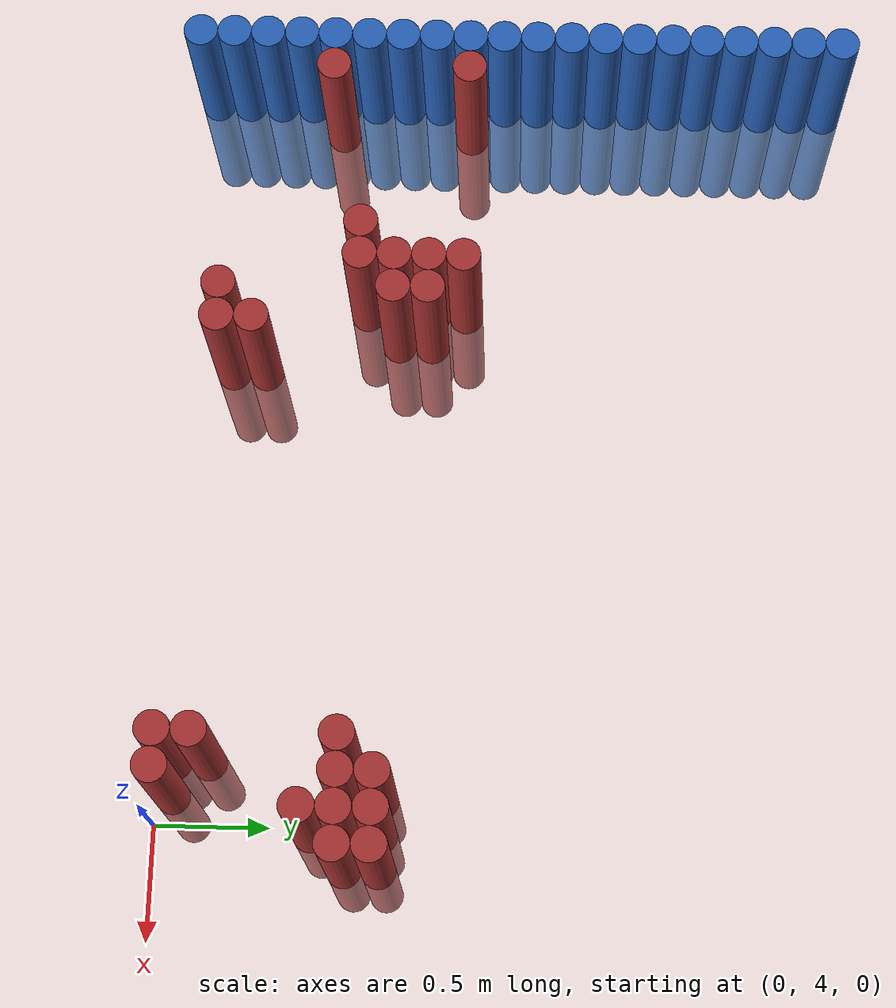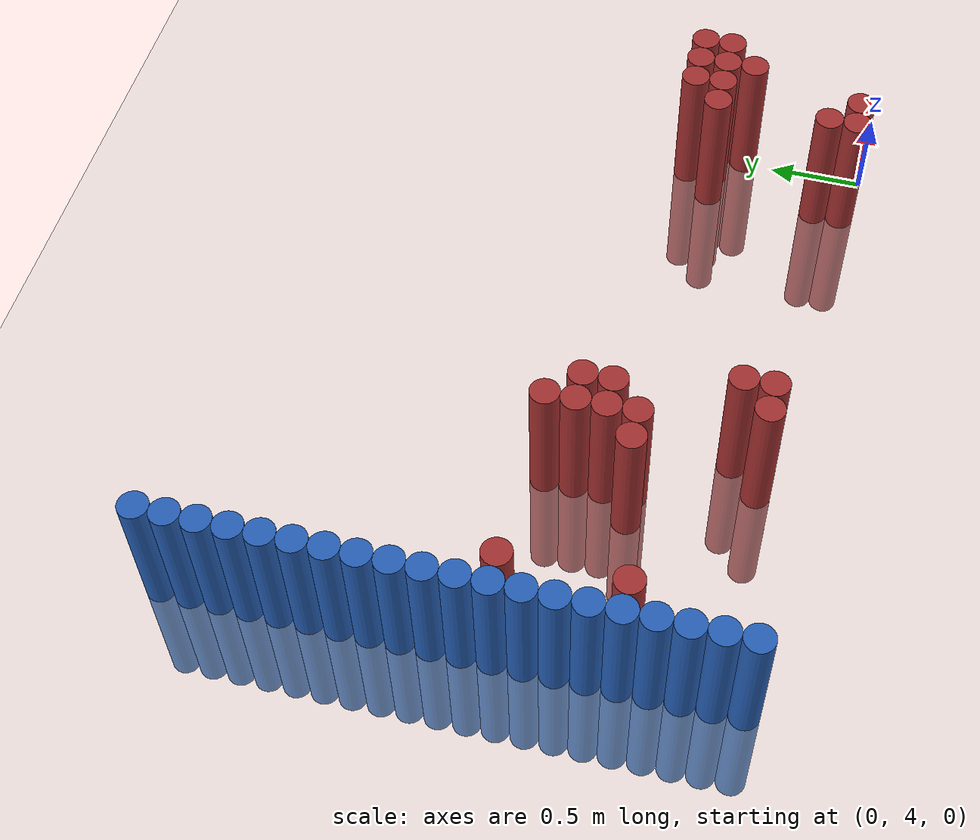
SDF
<sdf version="1.6">
 <world name="default">
  <model name="ground_plane">
   <static>1</static>
   <link name="link">
    <collision name="collision">
     <geometry><plane><normal>0 0 1</normal><size>100 100</size></plane></geometry>
     <surface><friction><ode><mu>100</mu><mu2>50</mu2></ode></friction></surface>
    </collision>
    <visual name="visual">
     <cast_shadows>0</cast_shadows>
     <geometry><plane><normal>0 0 1</normal><size>100 100</size></plane></geometry>
     <material>
      <script><uri>file://media/materials/scripts/gazebo.material</uri><name>Gazebo/Grey</name></script>
     </material>
    </visual>
   </link>
  </model>
  <model name="unit_cylinder_169">
   <static>1</static>
   <pose>-3.425000 4.075000 0.000000 0.000000 0.000000 0.000000</pose>
   <link name="link">
    <inertial>
     <mass>1</mass>
     <inertia><ixx>0.145833</ixx><ixy>0</ixy><ixz>0</ixz><iyy>0.145833</iyy><iyz>0</iyz><izz>0.125</izz></inertia>
    </inertial>
    <collision name="collision">
     <geometry><cylinder><radius>0.075000</radius><length>1.5</length></cylinder></geometry>
    </collision>
    <visual name="visual">
     <geometry><cylinder><radius>0.075000</radius><length>1.5</length></cylinder></geometry>
     <material>
      <ambient>0.152000 0.379000 0.720000 1</ambient>
      <diffuse>0.152000 0.379000 0.720000 1</diffuse>
     </material>
     <material>
      <script><name>Gazebo/Grey</name><uri>file://media/materials/scripts/gazebo.material</uri></script>
     </material>
    </visual>
   </link>
  </model>
  <model name="unit_cylinder_171">
   <static>1</static>
   <pose>-3.425000 4.225000 0.000000 0.000000 0.000000 0.000000</pose>
   <link name="link">
    <inertial>
     <mass>1</mass>
     <inertia><ixx>0.145833</ixx><ixy>0</ixy><ixz>0</ixz><iyy>0.145833</iyy><iyz>0</iyz><izz>0.125</izz></inertia>
    </inertial>
    <collision name="collision">
     <geometry><cylinder><radius>0.075000</radius><length>1.5</length></cylinder></geometry>
    </collision>
    <visual name="visual">
     <geometry><cylinder><radius>0.075000</radius><length>1.5</length></cylinder></geometry>
     <material>
      <ambient>0.152000 0.379000 0.720000 1</ambient>
      <diffuse>0.152000 0.379000 0.720000 1</diffuse>
     </material>
     <material>
      <script><name>Gazebo/Grey</name><uri>file://media/materials/scripts/gazebo.material</uri></script>
     </material>
    </visual>
   </link>
  </model>
  <model name="unit_cylinder_173">
   <static>1</static>
   <pose>-3.425000 4.375000 0.000000 0.000000 0.000000 0.000000</pose>
   <link name="link">
    <inertial>
     <mass>1</mass>
     <inertia><ixx>0.145833</ixx><ixy>0</ixy><ixz>0</ixz><iyy>0.145833</iyy><iyz>0</iyz><izz>0.125</izz></inertia>
    </inertial>
    <collision name="collision">
     <geometry><cylinder><radius>0.075000</radius><length>1.5</length></cylinder></geometry>
    </collision>
    <visual name="visual">
     <geometry><cylinder><radius>0.075000</radius><length>1.5</length></cylinder></geometry>
     <material>
      <ambient>0.152000 0.379000 0.720000 1</ambient>
      <diffuse>0.152000 0.379000 0.720000 1</diffuse>
     </material>
     <material>
      <script><name>Gazebo/Grey</name><uri>file://media/materials/scripts/gazebo.material</uri></script>
     </material>
    </visual>
   </link>
  </model>
  <model name="unit_cylinder_175">
   <static>1</static>
   <pose>-3.425000 4.525000 0.000000 0.000000 0.000000 0.000000</pose>
   <link name="link">
    <inertial>
     <mass>1</mass>
     <inertia><ixx>0.145833</ixx><ixy>0</ixy><ixz>0</ixz><iyy>0.145833</iyy><iyz>0</iyz><izz>0.125</izz></inertia>
    </inertial>
    <collision name="collision">
     <geometry><cylinder><radius>0.075000</radius><length>1.5</length></cylinder></geometry>
    </collision>
    <visual name="visual">
     <geometry><cylinder><radius>0.075000</radius><length>1.5</length></cylinder></geometry>
     <material>
      <ambient>0.152000 0.379000 0.720000 1</ambient>
      <diffuse>0.152000 0.379000 0.720000 1</diffuse>
     </material>
     <material>
      <script><name>Gazebo/Grey</name><uri>file://media/materials/scripts/gazebo.material</uri></script>
     </material>
    </visual>
   </link>
  </model>
  <model name="unit_cylinder_177">
   <static>1</static>
   <pose>-3.425000 4.675000 0.000000 0.000000 0.000000 0.000000</pose>
   <link name="link">
    <inertial>
     <mass>1</mass>
     <inertia><ixx>0.145833</ixx><ixy>0</ixy><ixz>0</ixz><iyy>0.145833</iyy><iyz>0</iyz><izz>0.125</izz></inertia>
    </inertial>
    <collision name="collision">
     <geometry><cylinder><radius>0.075000</radius><length>1.5</length></cylinder></geometry>
    </collision>
    <visual name="visual">
     <geometry><cylinder><radius>0.075000</radius><length>1.5</length></cylinder></geometry>
     <material>
      <ambient>0.152000 0.379000 0.720000 1</ambient>
      <diffuse>0.152000 0.379000 0.720000 1</diffuse>
     </material>
     <material>
      <script><name>Gazebo/Grey</name><uri>file://media/materials/scripts/gazebo.material</uri></script>
     </material>
    </visual>
   </link>
  </model>
  <model name="unit_cylinder_179">
   <static>1</static>
   <pose>-3.425000 4.825000 0.000000 0.000000 0.000000 0.000000</pose>
   <link name="link">
    <inertial>
     <mass>1</mass>
     <inertia><ixx>0.145833</ixx><ixy>0</ixy><ixz>0</ixz><iyy>0.145833</iyy><iyz>0</iyz><izz>0.125</izz></inertia>
    </inertial>
    <collision name="collision">
     <geometry><cylinder><radius>0.075000</radius><length>1.5</length></cylinder></geometry>
    </collision>
    <visual name="visual">
     <geometry><cylinder><radius>0.075000</radius><length>1.5</length></cylinder></geometry>
     <material>
      <ambient>0.152000 0.379000 0.720000 1</ambient>
      <diffuse>0.152000 0.379000 0.720000 1</diffuse>
     </material>
     <material>
      <script><name>Gazebo/Grey</name><uri>file://media/materials/scripts/gazebo.material</uri></script>
     </material>
    </visual>
   </link>
  </model>
  <model name="unit_cylinder_181">
   <static>1</static>
   <pose>-3.425000 4.975000 0.000000 0.000000 0.000000 0.000000</pose>
   <link name="link">
    <inertial>
     <mass>1</mass>
     <inertia><ixx>0.145833</ixx><ixy>0</ixy><ixz>0</ixz><iyy>0.145833</iyy><iyz>0</iyz><izz>0.125</izz></inertia>
    </inertial>
    <collision name="collision">
     <geometry><cylinder><radius>0.075000</radius><length>1.5</length></cylinder></geometry>
    </collision>
    <visual name="visual">
     <geometry><cylinder><radius>0.075000</radius><length>1.5</length></cylinder></geometry>
     <material>
      <ambient>0.152000 0.379000 0.720000 1</ambient>
      <diffuse>0.152000 0.379000 0.720000 1</diffuse>
     </material>
     <material>
      <script><name>Gazebo/Grey</name><uri>file://media/materials/scripts/gazebo.material</uri></script>
     </material>
    </visual>
   </link>
  </model>
  <model name="unit_cylinder_183">
   <static>1</static>
   <pose>-3.425000 5.125000 0.000000 0.000000 0.000000 0.000000</pose>
   <link name="link">
    <inertial>
     <mass>1</mass>
     <inertia><ixx>0.145833</ixx><ixy>0</ixy><ixz>0</ixz><iyy>0.145833</iyy><iyz>0</iyz><izz>0.125</izz></inertia>
    </inertial>
    <collision name="collision">
     <geometry><cylinder><radius>0.075000</radius><length>1.5</length></cylinder></geometry>
    </collision>
    <visual name="visual">
     <geometry><cylinder><radius>0.075000</radius><length>1.5</length></cylinder></geometry>
     <material>
      <ambient>0.152000 0.379000 0.720000 1</ambient>
      <diffuse>0.152000 0.379000 0.720000 1</diffuse>
     </material>
     <material>
      <script><name>Gazebo/Grey</name><uri>file://media/materials/scripts/gazebo.material</uri></script>
     </material>
    </visual>
   </link>
  </model>
  <model name="unit_cylinder_185">
   <static>1</static>
   <pose>-3.425000 5.275000 0.000000 0.000000 0.000000 0.000000</pose>
   <link name="link">
    <inertial>
     <mass>1</mass>
     <inertia><ixx>0.145833</ixx><ixy>0</ixy><ixz>0</ixz><iyy>0.145833</iyy><iyz>0</iyz><izz>0.125</izz></inertia>
    </inertial>
    <collision name="collision">
     <geometry><cylinder><radius>0.075000</radius><length>1.5</length></cylinder></geometry>
    </collision>
    <visual name="visual">
     <geometry><cylinder><radius>0.075000</radius><length>1.5</length></cylinder></geometry>
     <material>
      <ambient>0.152000 0.379000 0.720000 1</ambient>
      <diffuse>0.152000 0.379000 0.720000 1</diffuse>
     </material>
     <material>
      <script><name>Gazebo/Grey</name><uri>file://media/materials/scripts/gazebo.material</uri></script>
     </material>
    </visual>
   </link>
  </model>
  <model name="unit_cylinder_187">
   <static>1</static>
   <pose>-3.425000 5.425000 0.000000 0.000000 0.000000 0.000000</pose>
   <link name="link">
    <inertial>
     <mass>1</mass>
     <inertia><ixx>0.145833</ixx><ixy>0</ixy><ixz>0</ixz><iyy>0.145833</iyy><iyz>0</iyz><izz>0.125</izz></inertia>
    </inertial>
    <collision name="collision">
     <geometry><cylinder><radius>0.075000</radius><length>1.5</length></cylinder></geometry>
    </collision>
    <visual name="visual">
     <geometry><cylinder><radius>0.075000</radius><length>1.5</length></cylinder></geometry>
     <material>
      <ambient>0.152000 0.379000 0.720000 1</ambient>
      <diffuse>0.152000 0.379000 0.720000 1</diffuse>
     </material>
     <material>
      <script><name>Gazebo/Grey</name><uri>file://media/materials/scripts/gazebo.material</uri></script>
     </material>
    </visual>
   </link>
  </model>
  <model name="unit_cylinder_189">
   <static>1</static>
   <pose>-3.425000 5.575000 0.000000 0.000000 0.000000 0.000000</pose>
   <link name="link">
    <inertial>
     <mass>1</mass>
     <inertia><ixx>0.145833</ixx><ixy>0</ixy><ixz>0</ixz><iyy>0.145833</iyy><iyz>0</iyz><izz>0.125</izz></inertia>
    </inertial>
    <collision name="collision">
     <geometry><cylinder><radius>0.075000</radius><length>1.5</length></cylinder></geometry>
    </collision>
    <visual name="visual">
     <geometry><cylinder><radius>0.075000</radius><length>1.5</length></cylinder></geometry>
     <material>
      <ambient>0.152000 0.379000 0.720000 1</ambient>
      <diffuse>0.152000 0.379000 0.720000 1</diffuse>
     </material>
     <material>
      <script><name>Gazebo/Grey</name><uri>file://media/materials/scripts/gazebo.material</uri></script>
     </material>
    </visual>
   </link>
  </model>
  <model name="unit_cylinder_191">
   <static>1</static>
   <pose>-3.425000 5.725000 0.000000 0.000000 0.000000 0.000000</pose>
   <link name="link">
    <inertial>
     <mass>1</mass>
     <inertia><ixx>0.145833</ixx><ixy>0</ixy><ixz>0</ixz><iyy>0.145833</iyy><iyz>0</iyz><izz>0.125</izz></inertia>
    </inertial>
    <collision name="collision">
     <geometry><cylinder><radius>0.075000</radius><length>1.5</length></cylinder></geometry>
    </collision>
    <visual name="visual">
     <geometry><cylinder><radius>0.075000</radius><length>1.5</length></cylinder></geometry>
     <material>
      <ambient>0.152000 0.379000 0.720000 1</ambient>
      <diffuse>0.152000 0.379000 0.720000 1</diffuse>
     </material>
     <material>
      <script><name>Gazebo/Grey</name><uri>file://media/materials/scripts/gazebo.material</uri></script>
     </material>
    </visual>
   </link>
  </model>
  <model name="unit_cylinder_193">
   <static>1</static>
   <pose>-3.425000 5.875000 0.000000 0.000000 0.000000 0.000000</pose>
   <link name="link">
    <inertial>
     <mass>1</mass>
     <inertia><ixx>0.145833</ixx><ixy>0</ixy><ixz>0</ixz><iyy>0.145833</iyy><iyz>0</iyz><izz>0.125</izz></inertia>
    </inertial>
    <collision name="collision">
     <geometry><cylinder><radius>0.075000</radius><length>1.5</length></cylinder></geometry>
    </collision>
    <visual name="visual">
     <geometry><cylinder><radius>0.075000</radius><length>1.5</length></cylinder></geometry>
     <material>
      <ambient>0.152000 0.379000 0.720000 1</ambient>
      <diffuse>0.152000 0.379000 0.720000 1</diffuse>
     </material>
     <material>
      <script><name>Gazebo/Grey</name><uri>file://media/materials/scripts/gazebo.material</uri></script>
     </material>
    </visual>
   </link>
  </model>
  <model name="unit_cylinder_195">
   <static>1</static>
   <pose>-3.425000 6.025000 0.000000 0.000000 0.000000 0.000000</pose>
   <link name="link">
    <inertial>
     <mass>1</mass>
     <inertia><ixx>0.145833</ixx><ixy>0</ixy><ixz>0</ixz><iyy>0.145833</iyy><iyz>0</iyz><izz>0.125</izz></inertia>
    </inertial>
    <collision name="collision">
     <geometry><cylinder><radius>0.075000</radius><length>1.5</length></cylinder></geometry>
    </collision>
    <visual name="visual">
     <geometry><cylinder><radius>0.075000</radius><length>1.5</length></cylinder></geometry>
     <material>
      <ambient>0.152000 0.379000 0.720000 1</ambient>
      <diffuse>0.152000 0.379000 0.720000 1</diffuse>
     </material>
     <material>
      <script><name>Gazebo/Grey</name><uri>file://media/materials/scripts/gazebo.material</uri></script>
     </material>
    </visual>
   </link>
  </model>
  <model name="unit_cylinder_197">
   <static>1</static>
   <pose>-3.425000 6.175000 0.000000 0.000000 0.000000 0.000000</pose>
   <link name="link">
    <inertial>
     <mass>1</mass>
     <inertia><ixx>0.145833</ixx><ixy>0</ixy><ixz>0</ixz><iyy>0.145833</iyy><iyz>0</iyz><izz>0.125</izz></inertia>
    </inertial>
    <collision name="collision">
     <geometry><cylinder><radius>0.075000</radius><length>1.5</length></cylinder></geometry>
    </collision>
    <visual name="visual">
     <geometry><cylinder><radius>0.075000</radius><length>1.5</length></cylinder></geometry>
     <material>
      <ambient>0.152000 0.379000 0.720000 1</ambient>
      <diffuse>0.152000 0.379000 0.720000 1</diffuse>
     </material>
     <material>
      <script><name>Gazebo/Grey</name><uri>file://media/materials/scripts/gazebo.material</uri></script>
     </material>
    </visual>
   </link>
  </model>
  <model name="unit_cylinder_199">
   <static>1</static>
   <pose>-3.425000 6.325000 0.000000 0.000000 0.000000 0.000000</pose>
   <link name="link">
    <inertial>
     <mass>1</mass>
     <inertia><ixx>0.145833</ixx><ixy>0</ixy><ixz>0</ixz><iyy>0.145833</iyy><iyz>0</iyz><izz>0.125</izz></inertia>
    </inertial>
    <collision name="collision">
     <geometry><cylinder><radius>0.075000</radius><length>1.5</length></cylinder></geometry>
    </collision>
    <visual name="visual">
     <geometry><cylinder><radius>0.075000</radius><length>1.5</length></cylinder></geometry>
     <material>
      <ambient>0.152000 0.379000 0.720000 1</ambient>
      <diffuse>0.152000 0.379000 0.720000 1</diffuse>
     </material>
     <material>
      <script><name>Gazebo/Grey</name><uri>file://media/materials/scripts/gazebo.material</uri></script>
     </material>
    </visual>
   </link>
  </model>
  <model name="unit_cylinder_201">
   <static>1</static>
   <pose>-3.425000 6.475000 0.000000 0.000000 0.000000 0.000000</pose>
   <link name="link">
    <inertial>
     <mass>1</mass>
     <inertia><ixx>0.145833</ixx><ixy>0</ixy><ixz>0</ixz><iyy>0.145833</iyy><iyz>0</iyz><izz>0.125</izz></inertia>
    </inertial>
    <collision name="collision">
     <geometry><cylinder><radius>0.075000</radius><length>1.5</length></cylinder></geometry>
    </collision>
    <visual name="visual">
     <geometry><cylinder><radius>0.075000</radius><length>1.5</length></cylinder></geometry>
     <material>
      <ambient>0.152000 0.379000 0.720000 1</ambient>
      <diffuse>0.152000 0.379000 0.720000 1</diffuse>
     </material>
     <material>
      <script><name>Gazebo/Grey</name><uri>file://media/materials/scripts/gazebo.material</uri></script>
     </material>
    </visual>
   </link>
  </model>
  <model name="unit_cylinder_203">
   <static>1</static>
   <pose>-3.425000 6.625000 0.000000 0.000000 0.000000 0.000000</pose>
   <link name="link">
    <inertial>
     <mass>1</mass>
     <inertia><ixx>0.145833</ixx><ixy>0</ixy><ixz>0</ixz><iyy>0.145833</iyy><iyz>0</iyz><izz>0.125</izz></inertia>
    </inertial>
    <collision name="collision">
     <geometry><cylinder><radius>0.075000</radius><length>1.5</length></cylinder></geometry>
    </collision>
    <visual name="visual">
     <geometry><cylinder><radius>0.075000</radius><length>1.5</length></cylinder></geometry>
     <material>
      <ambient>0.152000 0.379000 0.720000 1</ambient>
      <diffuse>0.152000 0.379000 0.720000 1</diffuse>
     </material>
     <material>
      <script><name>Gazebo/Grey</name><uri>file://media/materials/scripts/gazebo.material</uri></script>
     </material>
    </visual>
   </link>
  </model>
  <model name="unit_cylinder_205">
   <static>1</static>
   <pose>-3.425000 6.775000 0.000000 0.000000 0.000000 0.000000</pose>
   <link name="link">
    <inertial>
     <mass>1</mass>
     <inertia><ixx>0.145833</ixx><ixy>0</ixy><ixz>0</ixz><iyy>0.145833</iyy><iyz>0</iyz><izz>0.125</izz></inertia>
    </inertial>
    <collision name="collision">
     <geometry><cylinder><radius>0.075000</radius><length>1.5</length></cylinder></geometry>
    </collision>
    <visual name="visual">
     <geometry><cylinder><radius>0.075000</radius><length>1.5</length></cylinder></geometry>
     <material>
      <ambient>0.152000 0.379000 0.720000 1</ambient>
      <diffuse>0.152000 0.379000 0.720000 1</diffuse>
     </material>
     <material>
      <script><name>Gazebo/Grey</name><uri>file://media/materials/scripts/gazebo.material</uri></script>
     </material>
    </visual>
   </link>
  </model>
  <model name="unit_cylinder_207">
   <static>1</static>
   <pose>-3.425000 6.925000 0.000000 0.000000 0.000000 0.000000</pose>
   <link name="link">
    <inertial>
     <mass>1</mass>
     <inertia><ixx>0.145833</ixx><ixy>0</ixy><ixz>0</ixz><iyy>0.145833</iyy><iyz>0</iyz><izz>0.125</izz></inertia>
    </inertial>
    <collision name="collision">
     <geometry><cylinder><radius>0.075000</radius><length>1.5</length></cylinder></geometry>
    </collision>
    <visual name="visual">
     <geometry><cylinder><radius>0.075000</radius><length>1.5</length></cylinder></geometry>
     <material>
      <ambient>0.152000 0.379000 0.720000 1</ambient>
      <diffuse>0.152000 0.379000 0.720000 1</diffuse>
     </material>
     <material>
      <script><name>Gazebo/Grey</name><uri>file://media/materials/scripts/gazebo.material</uri></script>
     </material>
    </visual>
   </link>
  </model>
  <model name="unit_cylinder_248">
   <static>1</static>
   <pose>-3.425000 4.075000 0.000000 0.000000 0.000000 0.000000</pose>
   <link name="link">
    <inertial>
     <mass>1</mass>
     <inertia><ixx>0.145833</ixx><ixy>0</ixy><ixz>0</ixz><iyy>0.145833</iyy><iyz>0</iyz><izz>0.125</izz></inertia>
    </inertial>
    <collision name="collision">
     <geometry><cylinder><radius>0.075000</radius><length>1.5</length></cylinder></geometry>
    </collision>
    <visual name="visual">
     <geometry><cylinder><radius>0.075000</radius><length>1.5</length></cylinder></geometry>
     <material>
      <ambient>0.152000 0.379000 0.720000 1</ambient>
      <diffuse>0.152000 0.379000 0.720000 1</diffuse>
     </material>
     <material>
      <script><name>Gazebo/Grey</name><uri>file://media/materials/scripts/gazebo.material</uri></script>
     </material>
    </visual>
   </link>
  </model>
  <model name="unit_cylinder_249">
   <static>1</static>
   <pose>-3.425000 4.225000 0.000000 0.000000 0.000000 0.000000</pose>
   <link name="link">
    <inertial>
     <mass>1</mass>
     <inertia><ixx>0.145833</ixx><ixy>0</ixy><ixz>0</ixz><iyy>0.145833</iyy><iyz>0</iyz><izz>0.125</izz></inertia>
    </inertial>
    <collision name="collision">
     <geometry><cylinder><radius>0.075000</radius><length>1.5</length></cylinder></geometry>
    </collision>
    <visual name="visual">
     <geometry><cylinder><radius>0.075000</radius><length>1.5</length></cylinder></geometry>
     <material>
      <ambient>0.152000 0.379000 0.720000 1</ambient>
      <diffuse>0.152000 0.379000 0.720000 1</diffuse>
     </material>
     <material>
      <script><name>Gazebo/Grey</name><uri>file://media/materials/scripts/gazebo.material</uri></script>
     </material>
    </visual>
   </link>
  </model>
  <model name="unit_cylinder_250">
   <static>1</static>
   <pose>-3.425000 4.375000 0.000000 0.000000 0.000000 0.000000</pose>
   <link name="link">
    <inertial>
     <mass>1</mass>
     <inertia><ixx>0.145833</ixx><ixy>0</ixy><ixz>0</ixz><iyy>0.145833</iyy><iyz>0</iyz><izz>0.125</izz></inertia>
    </inertial>
    <collision name="collision">
     <geometry><cylinder><radius>0.075000</radius><length>1.5</length></cylinder></geometry>
    </collision>
    <visual name="visual">
     <geometry><cylinder><radius>0.075000</radius><length>1.5</length></cylinder></geometry>
     <material>
      <ambient>0.152000 0.379000 0.720000 1</ambient>
      <diffuse>0.152000 0.379000 0.720000 1</diffuse>
     </material>
     <material>
      <script><name>Gazebo/Grey</name><uri>file://media/materials/scripts/gazebo.material</uri></script>
     </material>
    </visual>
   </link>
  </model>
  <model name="unit_cylinder_251">
   <static>1</static>
   <pose>-3.425000 4.525000 0.000000 0.000000 0.000000 0.000000</pose>
   <link name="link">
    <inertial>
     <mass>1</mass>
     <inertia><ixx>0.145833</ixx><ixy>0</ixy><ixz>0</ixz><iyy>0.145833</iyy><iyz>0</iyz><izz>0.125</izz></inertia>
    </inertial>
    <collision name="collision">
     <geometry><cylinder><radius>0.075000</radius><length>1.5</length></cylinder></geometry>
    </collision>
    <visual name="visual">
     <geometry><cylinder><radius>0.075000</radius><length>1.5</length></cylinder></geometry>
     <material>
      <ambient>0.152000 0.379000 0.720000 1</ambient>
      <diffuse>0.152000 0.379000 0.720000 1</diffuse>
     </material>
     <material>
      <script><name>Gazebo/Grey</name><uri>file://media/materials/scripts/gazebo.material</uri></script>
     </material>
    </visual>
   </link>
  </model>
  <model name="unit_cylinder_252">
   <static>1</static>
   <pose>-3.425000 4.675000 0.000000 0.000000 0.000000 0.000000</pose>
   <link name="link">
    <inertial>
     <mass>1</mass>
     <inertia><ixx>0.145833</ixx><ixy>0</ixy><ixz>0</ixz><iyy>0.145833</iyy><iyz>0</iyz><izz>0.125</izz></inertia>
    </inertial>
    <collision name="collision">
     <geometry><cylinder><radius>0.075000</radius><length>1.5</length></cylinder></geometry>
    </collision>
    <visual name="visual">
     <geometry><cylinder><radius>0.075000</radius><length>1.5</length></cylinder></geometry>
     <material>
      <ambient>0.152000 0.379000 0.720000 1</ambient>
      <diffuse>0.152000 0.379000 0.720000 1</diffuse>
     </material>
     <material>
      <script><name>Gazebo/Grey</name><uri>file://media/materials/scripts/gazebo.material</uri></script>
     </material>
    </visual>
   </link>
  </model>
  <model name="unit_cylinder_253">
   <static>1</static>
   <pose>-3.425000 4.825000 0.000000 0.000000 0.000000 0.000000</pose>
   <link name="link">
    <inertial>
     <mass>1</mass>
     <inertia><ixx>0.145833</ixx><ixy>0</ixy><ixz>0</ixz><iyy>0.145833</iyy><iyz>0</iyz><izz>0.125</izz></inertia>
    </inertial>
    <collision name="collision">
     <geometry><cylinder><radius>0.075000</radius><length>1.5</length></cylinder></geometry>
    </collision>
    <visual name="visual">
     <geometry><cylinder><radius>0.075000</radius><length>1.5</length></cylinder></geometry>
     <material>
      <ambient>0.152000 0.379000 0.720000 1</ambient>
      <diffuse>0.152000 0.379000 0.720000 1</diffuse>
     </material>
     <material>
      <script><name>Gazebo/Grey</name><uri>file://media/materials/scripts/gazebo.material</uri></script>
     </material>
    </visual>
   </link>
  </model>
  <model name="unit_cylinder_254">
   <static>1</static>
   <pose>-3.425000 4.975000 0.000000 0.000000 0.000000 0.000000</pose>
   <link name="link">
    <inertial>
     <mass>1</mass>
     <inertia><ixx>0.145833</ixx><ixy>0</ixy><ixz>0</ixz><iyy>0.145833</iyy><iyz>0</iyz><izz>0.125</izz></inertia>
    </inertial>
    <collision name="collision">
     <geometry><cylinder><radius>0.075000</radius><length>1.5</length></cylinder></geometry>
    </collision>
    <visual name="visual">
     <geometry><cylinder><radius>0.075000</radius><length>1.5</length></cylinder></geometry>
     <material>
      <ambient>0.152000 0.379000 0.720000 1</ambient>
      <diffuse>0.152000 0.379000 0.720000 1</diffuse>
     </material>
     <material>
      <script><name>Gazebo/Grey</name><uri>file://media/materials/scripts/gazebo.material</uri></script>
     </material>
    </visual>
   </link>
  </model>
  <model name="unit_cylinder_255">
   <static>1</static>
   <pose>-3.425000 5.125000 0.000000 0.000000 0.000000 0.000000</pose>
   <link name="link">
    <inertial>
     <mass>1</mass>
     <inertia><ixx>0.145833</ixx><ixy>0</ixy><ixz>0</ixz><iyy>0.145833</iyy><iyz>0</iyz><izz>0.125</izz></inertia>
    </inertial>
    <collision name="collision">
     <geometry><cylinder><radius>0.075000</radius><length>1.5</length></cylinder></geometry>
    </collision>
    <visual name="visual">
     <geometry><cylinder><radius>0.075000</radius><length>1.5</length></cylinder></geometry>
     <material>
      <ambient>0.152000 0.379000 0.720000 1</ambient>
      <diffuse>0.152000 0.379000 0.720000 1</diffuse>
     </material>
     <material>
      <script><name>Gazebo/Grey</name><uri>file://media/materials/scripts/gazebo.material</uri></script>
     </material>
    </visual>
   </link>
  </model>
  <model name="unit_cylinder_256">
   <static>1</static>
   <pose>-3.425000 5.275000 0.000000 0.000000 0.000000 0.000000</pose>
   <link name="link">
    <inertial>
     <mass>1</mass>
     <inertia><ixx>0.145833</ixx><ixy>0</ixy><ixz>0</ixz><iyy>0.145833</iyy><iyz>0</iyz><izz>0.125</izz></inertia>
    </inertial>
    <collision name="collision">
     <geometry><cylinder><radius>0.075000</radius><length>1.5</length></cylinder></geometry>
    </collision>
    <visual name="visual">
     <geometry><cylinder><radius>0.075000</radius><length>1.5</length></cylinder></geometry>
     <material>
      <ambient>0.152000 0.379000 0.720000 1</ambient>
      <diffuse>0.152000 0.379000 0.720000 1</diffuse>
     </material>
     <material>
      <script><name>Gazebo/Grey</name><uri>file://media/materials/scripts/gazebo.material</uri></script>
     </material>
    </visual>
   </link>
  </model>
  <model name="unit_cylinder_257">
   <static>1</static>
   <pose>-3.425000 5.425000 0.000000 0.000000 0.000000 0.000000</pose>
   <link name="link">
    <inertial>
     <mass>1</mass>
     <inertia><ixx>0.145833</ixx><ixy>0</ixy><ixz>0</ixz><iyy>0.145833</iyy><iyz>0</iyz><izz>0.125</izz></inertia>
    </inertial>
    <collision name="collision">
     <geometry><cylinder><radius>0.075000</radius><length>1.5</length></cylinder></geometry>
    </collision>
    <visual name="visual">
     <geometry><cylinder><radius>0.075000</radius><length>1.5</length></cylinder></geometry>
     <material>
      <ambient>0.152000 0.379000 0.720000 1</ambient>
      <diffuse>0.152000 0.379000 0.720000 1</diffuse>
     </material>
     <material>
      <script><name>Gazebo/Grey</name><uri>file://media/materials/scripts/gazebo.material</uri></script>
     </material>
    </visual>
   </link>
  </model>
  <model name="unit_cylinder_280">
   <static>1</static>
   <pose>-3.275000 4.675000 0.000000 0.000000 0.000000 0.000000</pose>
   <link name="link">
    <inertial>
     <mass>1</mass>
     <inertia><ixx>0.145833</ixx><ixy>0</ixy><ixz>0</ixz><iyy>0.145833</iyy><iyz>0</iyz><izz>0.125</izz></inertia>
    </inertial>
    <collision name="collision">
     <geometry><cylinder><radius>0.075000</radius><length>1.5</length></cylinder></geometry>
    </collision>
    <visual name="visual">
     <geometry><cylinder><radius>0.075000</radius><length>1.5</length></cylinder></geometry>
     <material>
      <ambient>0.648000 0.192000 0.192000 1</ambient>
      <diffuse>0.648000 0.192000 0.192000 1</diffuse>
     </material>
     <material>
      <script><name>Gazebo/Grey</name><uri>file://media/materials/scripts/gazebo.material</uri></script>
     </material>
    </visual>
   </link>
  </model>
  <model name="unit_cylinder_281">
   <static>1</static>
   <pose>-3.275000 5.275000 0.000000 0.000000 0.000000 0.000000</pose>
   <link name="link">
    <inertial>
     <mass>1</mass>
     <inertia><ixx>0.145833</ixx><ixy>0</ixy><ixz>0</ixz><iyy>0.145833</iyy><iyz>0</iyz><izz>0.125</izz></inertia>
    </inertial>
    <collision name="collision">
     <geometry><cylinder><radius>0.075000</radius><length>1.5</length></cylinder></geometry>
    </collision>
    <visual name="visual">
     <geometry><cylinder><radius>0.075000</radius><length>1.5</length></cylinder></geometry>
     <material>
      <ambient>0.648000 0.192000 0.192000 1</ambient>
      <diffuse>0.648000 0.192000 0.192000 1</diffuse>
     </material>
     <material>
      <script><name>Gazebo/Grey</name><uri>file://media/materials/scripts/gazebo.material</uri></script>
     </material>
    </visual>
   </link>
  </model>
  <model name="unit_cylinder_323">
   <static>1</static>
   <pose>-2.525000 4.825000 0.000000 0.000000 0.000000 0.000000</pose>
   <link name="link">
    <inertial>
     <mass>1</mass>
     <inertia><ixx>0.145833</ixx><ixy>0</ixy><ixz>0</ixz><iyy>0.145833</iyy><iyz>0</iyz><izz>0.125</izz></inertia>
    </inertial>
    <collision name="collision">
     <geometry><cylinder><radius>0.075000</radius><length>1.5</length></cylinder></geometry>
    </collision>
    <visual name="visual">
     <geometry><cylinder><radius>0.075000</radius><length>1.5</length></cylinder></geometry>
     <material>
      <ambient>0.648000 0.192000 0.192000 1</ambient>
      <diffuse>0.648000 0.192000 0.192000 1</diffuse>
     </material>
     <material>
      <script><name>Gazebo/Grey</name><uri>file://media/materials/scripts/gazebo.material</uri></script>
     </material>
    </visual>
   </link>
  </model>
  <model name="unit_cylinder_330">
   <static>1</static>
   <pose>-2.375000 4.825000 0.000000 0.000000 0.000000 0.000000</pose>
   <link name="link">
    <inertial>
     <mass>1</mass>
     <inertia><ixx>0.145833</ixx><ixy>0</ixy><ixz>0</ixz><iyy>0.145833</iyy><iyz>0</iyz><izz>0.125</izz></inertia>
    </inertial>
    <collision name="collision">
     <geometry><cylinder><radius>0.075000</radius><length>1.5</length></cylinder></geometry>
    </collision>
    <visual name="visual">
     <geometry><cylinder><radius>0.075000</radius><length>1.5</length></cylinder></geometry>
     <material>
      <ambient>0.648000 0.192000 0.192000 1</ambient>
      <diffuse>0.648000 0.192000 0.192000 1</diffuse>
     </material>
     <material>
      <script><name>Gazebo/Grey</name><uri>file://media/materials/scripts/gazebo.material</uri></script>
     </material>
    </visual>
   </link>
  </model>
  <model name="unit_cylinder_331">
   <static>1</static>
   <pose>-2.375000 4.975000 0.000000 0.000000 0.000000 0.000000</pose>
   <link name="link">
    <inertial>
     <mass>1</mass>
     <inertia><ixx>0.145833</ixx><ixy>0</ixy><ixz>0</ixz><iyy>0.145833</iyy><iyz>0</iyz><izz>0.125</izz></inertia>
    </inertial>
    <collision name="collision">
     <geometry><cylinder><radius>0.075000</radius><length>1.5</length></cylinder></geometry>
    </collision>
    <visual name="visual">
     <geometry><cylinder><radius>0.075000</radius><length>1.5</length></cylinder></geometry>
     <material>
      <ambient>0.648000 0.192000 0.192000 1</ambient>
      <diffuse>0.648000 0.192000 0.192000 1</diffuse>
     </material>
     <material>
      <script><name>Gazebo/Grey</name><uri>file://media/materials/scripts/gazebo.material</uri></script>
     </material>
    </visual>
   </link>
  </model>
  <model name="unit_cylinder_332">
   <static>1</static>
   <pose>-2.375000 5.125000 0.000000 0.000000 0.000000 0.000000</pose>
   <link name="link">
    <inertial>
     <mass>1</mass>
     <inertia><ixx>0.145833</ixx><ixy>0</ixy><ixz>0</ixz><iyy>0.145833</iyy><iyz>0</iyz><izz>0.125</izz></inertia>
    </inertial>
    <collision name="collision">
     <geometry><cylinder><radius>0.075000</radius><length>1.5</length></cylinder></geometry>
    </collision>
    <visual name="visual">
     <geometry><cylinder><radius>0.075000</radius><length>1.5</length></cylinder></geometry>
     <material>
      <ambient>0.648000 0.192000 0.192000 1</ambient>
      <diffuse>0.648000 0.192000 0.192000 1</diffuse>
     </material>
     <material>
      <script><name>Gazebo/Grey</name><uri>file://media/materials/scripts/gazebo.material</uri></script>
     </material>
    </visual>
   </link>
  </model>
  <model name="unit_cylinder_333">
   <static>1</static>
   <pose>-2.375000 5.275000 0.000000 0.000000 0.000000 0.000000</pose>
   <link name="link">
    <inertial>
     <mass>1</mass>
     <inertia><ixx>0.145833</ixx><ixy>0</ixy><ixz>0</ixz><iyy>0.145833</iyy><iyz>0</iyz><izz>0.125</izz></inertia>
    </inertial>
    <collision name="collision">
     <geometry><cylinder><radius>0.075000</radius><length>1.5</length></cylinder></geometry>
    </collision>
    <visual name="visual">
     <geometry><cylinder><radius>0.075000</radius><length>1.5</length></cylinder></geometry>
     <material>
      <ambient>0.648000 0.192000 0.192000 1</ambient>
      <diffuse>0.648000 0.192000 0.192000 1</diffuse>
     </material>
     <material>
      <script><name>Gazebo/Grey</name><uri>file://media/materials/scripts/gazebo.material</uri></script>
     </material>
    </visual>
   </link>
  </model>
  <model name="unit_cylinder_338">
   <static>1</static>
   <pose>-2.225000 4.225000 0.000000 0.000000 0.000000 0.000000</pose>
   <link name="link">
    <inertial>
     <mass>1</mass>
     <inertia><ixx>0.145833</ixx><ixy>0</ixy><ixz>0</ixz><iyy>0.145833</iyy><iyz>0</iyz><izz>0.125</izz></inertia>
    </inertial>
    <collision name="collision">
     <geometry><cylinder><radius>0.075000</radius><length>1.5</length></cylinder></geometry>
    </collision>
    <visual name="visual">
     <geometry><cylinder><radius>0.075000</radius><length>1.5</length></cylinder></geometry>
     <material>
      <ambient>0.648000 0.192000 0.192000 1</ambient>
      <diffuse>0.648000 0.192000 0.192000 1</diffuse>
     </material>
     <material>
      <script><name>Gazebo/Grey</name><uri>file://media/materials/scripts/gazebo.material</uri></script>
     </material>
    </visual>
   </link>
  </model>
  <model name="unit_cylinder_339">
   <static>1</static>
   <pose>-2.225000 4.975000 0.000000 0.000000 0.000000 0.000000</pose>
   <link name="link">
    <inertial>
     <mass>1</mass>
     <inertia><ixx>0.145833</ixx><ixy>0</ixy><ixz>0</ixz><iyy>0.145833</iyy><iyz>0</iyz><izz>0.125</izz></inertia>
    </inertial>
    <collision name="collision">
     <geometry><cylinder><radius>0.075000</radius><length>1.5</length></cylinder></geometry>
    </collision>
    <visual name="visual">
     <geometry><cylinder><radius>0.075000</radius><length>1.5</length></cylinder></geometry>
     <material>
      <ambient>0.648000 0.192000 0.192000 1</ambient>
      <diffuse>0.648000 0.192000 0.192000 1</diffuse>
     </material>
     <material>
      <script><name>Gazebo/Grey</name><uri>file://media/materials/scripts/gazebo.material</uri></script>
     </material>
    </visual>
   </link>
  </model>
  <model name="unit_cylinder_340">
   <static>1</static>
   <pose>-2.225000 5.125000 0.000000 0.000000 0.000000 0.000000</pose>
   <link name="link">
    <inertial>
     <mass>1</mass>
     <inertia><ixx>0.145833</ixx><ixy>0</ixy><ixz>0</ixz><iyy>0.145833</iyy><iyz>0</iyz><izz>0.125</izz></inertia>
    </inertial>
    <collision name="collision">
     <geometry><cylinder><radius>0.075000</radius><length>1.5</length></cylinder></geometry>
    </collision>
    <visual name="visual">
     <geometry><cylinder><radius>0.075000</radius><length>1.5</length></cylinder></geometry>
     <material>
      <ambient>0.648000 0.192000 0.192000 1</ambient>
      <diffuse>0.648000 0.192000 0.192000 1</diffuse>
     </material>
     <material>
      <script><name>Gazebo/Grey</name><uri>file://media/materials/scripts/gazebo.material</uri></script>
     </material>
    </visual>
   </link>
  </model>
  <model name="unit_cylinder_347">
   <static>1</static>
   <pose>-2.075000 4.225000 0.000000 0.000000 0.000000 0.000000</pose>
   <link name="link">
    <inertial>
     <mass>1</mass>
     <inertia><ixx>0.145833</ixx><ixy>0</ixy><ixz>0</ixz><iyy>0.145833</iyy><iyz>0</iyz><izz>0.125</izz></inertia>
    </inertial>
    <collision name="collision">
     <geometry><cylinder><radius>0.075000</radius><length>1.5</length></cylinder></geometry>
    </collision>
    <visual name="visual">
     <geometry><cylinder><radius>0.075000</radius><length>1.5</length></cylinder></geometry>
     <material>
      <ambient>0.648000 0.192000 0.192000 1</ambient>
      <diffuse>0.648000 0.192000 0.192000 1</diffuse>
     </material>
     <material>
      <script><name>Gazebo/Grey</name><uri>file://media/materials/scripts/gazebo.material</uri></script>
     </material>
    </visual>
   </link>
  </model>
  <model name="unit_cylinder_348">
   <static>1</static>
   <pose>-2.075000 4.375000 0.000000 0.000000 0.000000 0.000000</pose>
   <link name="link">
    <inertial>
     <mass>1</mass>
     <inertia><ixx>0.145833</ixx><ixy>0</ixy><ixz>0</ixz><iyy>0.145833</iyy><iyz>0</iyz><izz>0.125</izz></inertia>
    </inertial>
    <collision name="collision">
     <geometry><cylinder><radius>0.075000</radius><length>1.5</length></cylinder></geometry>
    </collision>
    <visual name="visual">
     <geometry><cylinder><radius>0.075000</radius><length>1.5</length></cylinder></geometry>
     <material>
      <ambient>0.648000 0.192000 0.192000 1</ambient>
      <diffuse>0.648000 0.192000 0.192000 1</diffuse>
     </material>
     <material>
      <script><name>Gazebo/Grey</name><uri>file://media/materials/scripts/gazebo.material</uri></script>
     </material>
    </visual>
   </link>
  </model>
  <model name="unit_cylinder_414">
   <static>1</static>
   <pose>-0.275000 4.075000 0.000000 0.000000 0.000000 0.000000</pose>
   <link name="link">
    <inertial>
     <mass>1</mass>
     <inertia><ixx>0.145833</ixx><ixy>0</ixy><ixz>0</ixz><iyy>0.145833</iyy><iyz>0</iyz><izz>0.125</izz></inertia>
    </inertial>
    <collision name="collision">
     <geometry><cylinder><radius>0.075000</radius><length>1.5</length></cylinder></geometry>
    </collision>
    <visual name="visual">
     <geometry><cylinder><radius>0.075000</radius><length>1.5</length></cylinder></geometry>
     <material>
      <ambient>0.648000 0.192000 0.192000 1</ambient>
      <diffuse>0.648000 0.192000 0.192000 1</diffuse>
     </material>
     <material>
      <script><name>Gazebo/Grey</name><uri>file://media/materials/scripts/gazebo.material</uri></script>
     </material>
    </visual>
   </link>
  </model>
  <model name="unit_cylinder_415">
   <static>1</static>
   <pose>-0.275000 4.225000 0.000000 0.000000 0.000000 0.000000</pose>
   <link name="link">
    <inertial>
     <mass>1</mass>
     <inertia><ixx>0.145833</ixx><ixy>0</ixy><ixz>0</ixz><iyy>0.145833</iyy><iyz>0</iyz><izz>0.125</izz></inertia>
    </inertial>
    <collision name="collision">
     <geometry><cylinder><radius>0.075000</radius><length>1.5</length></cylinder></geometry>
    </collision>
    <visual name="visual">
     <geometry><cylinder><radius>0.075000</radius><length>1.5</length></cylinder></geometry>
     <material>
      <ambient>0.648000 0.192000 0.192000 1</ambient>
      <diffuse>0.648000 0.192000 0.192000 1</diffuse>
     </material>
     <material>
      <script><name>Gazebo/Grey</name><uri>file://media/materials/scripts/gazebo.material</uri></script>
     </material>
    </visual>
   </link>
  </model>
  <model name="unit_cylinder_416">
   <static>1</static>
   <pose>-0.275000 4.825000 0.000000 0.000000 0.000000 0.000000</pose>
   <link name="link">
    <inertial>
     <mass>1</mass>
     <inertia><ixx>0.145833</ixx><ixy>0</ixy><ixz>0</ixz><iyy>0.145833</iyy><iyz>0</iyz><izz>0.125</izz></inertia>
    </inertial>
    <collision name="collision">
     <geometry><cylinder><radius>0.075000</radius><length>1.5</length></cylinder></geometry>
    </collision>
    <visual name="visual">
     <geometry><cylinder><radius>0.075000</radius><length>1.5</length></cylinder></geometry>
     <material>
      <ambient>0.648000 0.192000 0.192000 1</ambient>
      <diffuse>0.648000 0.192000 0.192000 1</diffuse>
     </material>
     <material>
      <script><name>Gazebo/Grey</name><uri>file://media/materials/scripts/gazebo.material</uri></script>
     </material>
    </visual>
   </link>
  </model>
  <model name="unit_cylinder_426">
   <static>1</static>
   <pose>-0.125000 4.075000 0.000000 0.000000 0.000000 0.000000</pose>
   <link name="link">
    <inertial>
     <mass>1</mass>
     <inertia><ixx>0.145833</ixx><ixy>0</ixy><ixz>0</ixz><iyy>0.145833</iyy><iyz>0</iyz><izz>0.125</izz></inertia>
    </inertial>
    <collision name="collision">
     <geometry><cylinder><radius>0.075000</radius><length>1.5</length></cylinder></geometry>
    </collision>
    <visual name="visual">
     <geometry><cylinder><radius>0.075000</radius><length>1.5</length></cylinder></geometry>
     <material>
      <ambient>0.648000 0.192000 0.192000 1</ambient>
      <diffuse>0.648000 0.192000 0.192000 1</diffuse>
     </material>
     <material>
      <script><name>Gazebo/Grey</name><uri>file://media/materials/scripts/gazebo.material</uri></script>
     </material>
    </visual>
   </link>
  </model>
  <model name="unit_cylinder_427">
   <static>1</static>
   <pose>-0.125000 4.825000 0.000000 0.000000 0.000000 0.000000</pose>
   <link name="link">
    <inertial>
     <mass>1</mass>
     <inertia><ixx>0.145833</ixx><ixy>0</ixy><ixz>0</ixz><iyy>0.145833</iyy><iyz>0</iyz><izz>0.125</izz></inertia>
    </inertial>
    <collision name="collision">
     <geometry><cylinder><radius>0.075000</radius><length>1.5</length></cylinder></geometry>
    </collision>
    <visual name="visual">
     <geometry><cylinder><radius>0.075000</radius><length>1.5</length></cylinder></geometry>
     <material>
      <ambient>0.648000 0.192000 0.192000 1</ambient>
      <diffuse>0.648000 0.192000 0.192000 1</diffuse>
     </material>
     <material>
      <script><name>Gazebo/Grey</name><uri>file://media/materials/scripts/gazebo.material</uri></script>
     </material>
    </visual>
   </link>
  </model>
  <model name="unit_cylinder_428">
   <static>1</static>
   <pose>-0.125000 4.975000 0.000000 0.000000 0.000000 0.000000</pose>
   <link name="link">
    <inertial>
     <mass>1</mass>
     <inertia><ixx>0.145833</ixx><ixy>0</ixy><ixz>0</ixz><iyy>0.145833</iyy><iyz>0</iyz><izz>0.125</izz></inertia>
    </inertial>
    <collision name="collision">
     <geometry><cylinder><radius>0.075000</radius><length>1.5</length></cylinder></geometry>
    </collision>
    <visual name="visual">
     <geometry><cylinder><radius>0.075000</radius><length>1.5</length></cylinder></geometry>
     <material>
      <ambient>0.648000 0.192000 0.192000 1</ambient>
      <diffuse>0.648000 0.192000 0.192000 1</diffuse>
     </material>
     <material>
      <script><name>Gazebo/Grey</name><uri>file://media/materials/scripts/gazebo.material</uri></script>
     </material>
    </visual>
   </link>
  </model>
  <model name="unit_cylinder_435">
   <static>1</static>
   <pose>0.025000 4.675000 0.000000 0.000000 0.000000 0.000000</pose>
   <link name="link">
    <inertial>
     <mass>1</mass>
     <inertia><ixx>0.145833</ixx><ixy>0</ixy><ixz>0</ixz><iyy>0.145833</iyy><iyz>0</iyz><izz>0.125</izz></inertia>
    </inertial>
    <collision name="collision">
     <geometry><cylinder><radius>0.075000</radius><length>1.5</length></cylinder></geometry>
    </collision>
    <visual name="visual">
     <geometry><cylinder><radius>0.075000</radius><length>1.5</length></cylinder></geometry>
     <material>
      <ambient>0.648000 0.192000 0.192000 1</ambient>
      <diffuse>0.648000 0.192000 0.192000 1</diffuse>
     </material>
     <material>
      <script><name>Gazebo/Grey</name><uri>file://media/materials/scripts/gazebo.material</uri></script>
     </material>
    </visual>
   </link>
  </model>
  <model name="unit_cylinder_436">
   <static>1</static>
   <pose>0.025000 4.825000 0.000000 0.000000 0.000000 0.000000</pose>
   <link name="link">
    <inertial>
     <mass>1</mass>
     <inertia><ixx>0.145833</ixx><ixy>0</ixy><ixz>0</ixz><iyy>0.145833</iyy><iyz>0</iyz><izz>0.125</izz></inertia>
    </inertial>
    <collision name="collision">
     <geometry><cylinder><radius>0.075000</radius><length>1.5</length></cylinder></geometry>
    </collision>
    <visual name="visual">
     <geometry><cylinder><radius>0.075000</radius><length>1.5</length></cylinder></geometry>
     <material>
      <ambient>0.648000 0.192000 0.192000 1</ambient>
      <diffuse>0.648000 0.192000 0.192000 1</diffuse>
     </material>
     <material>
      <script><name>Gazebo/Grey</name><uri>file://media/materials/scripts/gazebo.material</uri></script>
     </material>
    </visual>
   </link>
  </model>
  <model name="unit_cylinder_437">
   <static>1</static>
   <pose>0.025000 4.975000 0.000000 0.000000 0.000000 0.000000</pose>
   <link name="link">
    <inertial>
     <mass>1</mass>
     <inertia><ixx>0.145833</ixx><ixy>0</ixy><ixz>0</ixz><iyy>0.145833</iyy><iyz>0</iyz><izz>0.125</izz></inertia>
    </inertial>
    <collision name="collision">
     <geometry><cylinder><radius>0.075000</radius><length>1.5</length></cylinder></geometry>
    </collision>
    <visual name="visual">
     <geometry><cylinder><radius>0.075000</radius><length>1.5</length></cylinder></geometry>
     <material>
      <ambient>0.648000 0.192000 0.192000 1</ambient>
      <diffuse>0.648000 0.192000 0.192000 1</diffuse>
     </material>
     <material>
      <script><name>Gazebo/Grey</name><uri>file://media/materials/scripts/gazebo.material</uri></script>
     </material>
    </visual>
   </link>
  </model>
  <model name="unit_cylinder_438">
   <static>1</static>
   <pose>0.175000 4.825000 0.000000 0.000000 0.000000 0.000000</pose>
   <link name="link">
    <inertial>
     <mass>1</mass>
     <inertia><ixx>0.145833</ixx><ixy>0</ixy><ixz>0</ixz><iyy>0.145833</iyy><iyz>0</iyz><izz>0.125</izz></inertia>
    </inertial>
    <collision name="collision">
     <geometry><cylinder><radius>0.075000</radius><length>1.5</length></cylinder></geometry>
    </collision>
    <visual name="visual">
     <geometry><cylinder><radius>0.075000</radius><length>1.5</length></cylinder></geometry>
     <material>
      <ambient>0.648000 0.192000 0.192000 1</ambient>
      <diffuse>0.648000 0.192000 0.192000 1</diffuse>
     </material>
     <material>
      <script><name>Gazebo/Grey</name><uri>file://media/materials/scripts/gazebo.material</uri></script>
     </material>
    </visual>
   </link>
  </model>
  <model name="unit_cylinder_439">
   <static>1</static>
   <pose>0.175000 4.975000 0.000000 0.000000 0.000000 0.000000</pose>
   <link name="link">
    <inertial>
     <mass>1</mass>
     <inertia><ixx>0.145833</ixx><ixy>0</ixy><ixz>0</ixz><iyy>0.145833</iyy><iyz>0</iyz><izz>0.125</izz></inertia>
    </inertial>
    <collision name="collision">
     <geometry><cylinder><radius>0.075000</radius><length>1.5</length></cylinder></geometry>
    </collision>
    <visual name="visual">
     <geometry><cylinder><radius>0.075000</radius><length>1.5</length></cylinder></geometry>
     <material>
      <ambient>0.648000 0.192000 0.192000 1</ambient>
      <diffuse>0.648000 0.192000 0.192000 1</diffuse>
     </material>
     <material>
      <script><name>Gazebo/Grey</name><uri>file://media/materials/scripts/gazebo.material</uri></script>
     </material>
    </visual>
   </link>
  </model>
 </world>
</sdf>
